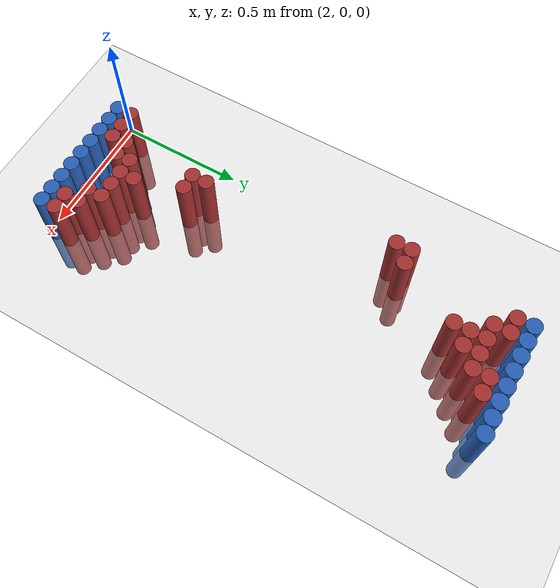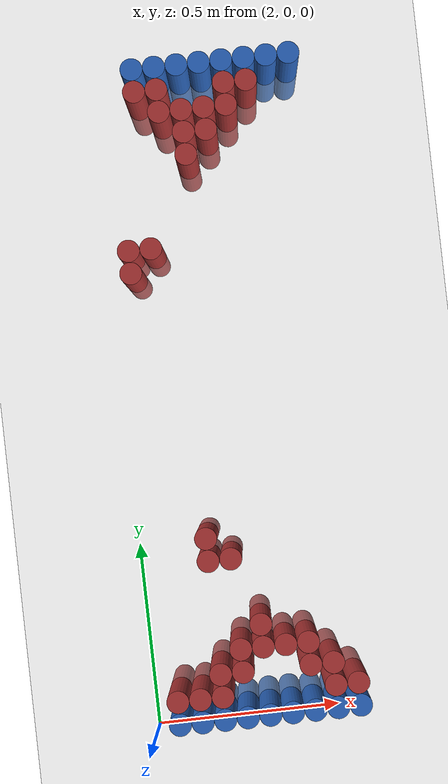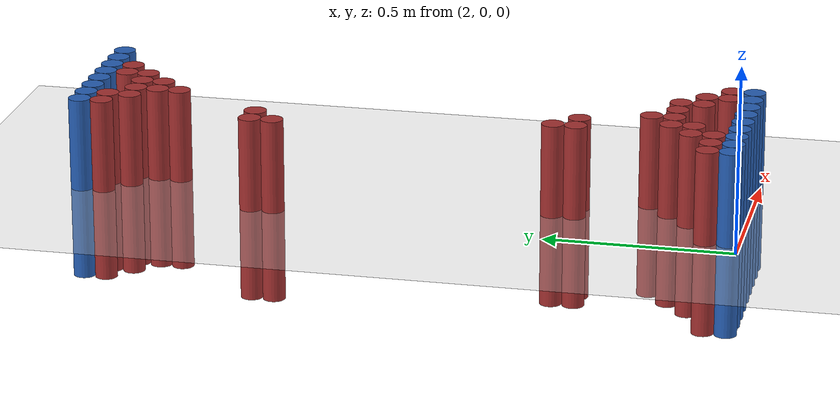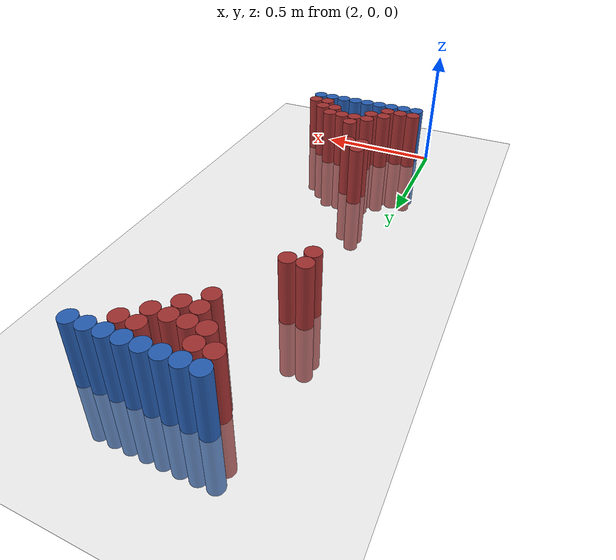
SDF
<sdf version="1.6">
 <world name="default">
  <model name="ground_plane">
   <static>1</static>
   <link name="link">
    <collision name="collision">
     <geometry><plane><normal>0 0 1</normal><size>100 100</size></plane></geometry>
     <surface><friction><ode><mu>100</mu><mu2>50</mu2></ode></friction></surface>
    </collision>
    <visual name="visual">
     <cast_shadows>0</cast_shadows>
     <geometry><plane><normal>0 0 1</normal><size>100 100</size></plane></geometry>
     <material>
      <script><uri>file://media/materials/scripts/gazebo.material</uri><name>Gazebo/Grey</name></script>
     </material>
    </visual>
   </link>
  </model>
  <model name="unit_cylinder_96">
   <static>1</static>
   <pose>2.130000 1.770000 0.000000 0.000000 0.000000 0.000000</pose>
   <link name="link">
    <inertial>
     <mass>1</mass>
     <inertia><ixx>0.145833</ixx><ixy>0</ixy><ixz>0</ixz><iyy>0.145833</iyy><iyz>0</iyz><izz>0.125</izz></inertia>
    </inertial>
    <collision name="collision">
     <geometry><cylinder><radius>0.030000</radius><length>0.5</length></cylinder></geometry>
    </collision>
    <visual name="visual">
     <geometry><cylinder><radius>0.030000</radius><length>0.5</length></cylinder></geometry>
     <material>
      <ambient>0.152000 0.379000 0.720000 1</ambient>
      <diffuse>0.152000 0.379000 0.720000 1</diffuse>
     </material>
     <material>
      <script><name>Gazebo/Grey</name><uri>file://media/materials/scripts/gazebo.material</uri></script>
     </material>
    </visual>
   </link>
  </model>
  <model name="unit_cylinder_97">
   <static>1</static>
   <pose>2.190000 1.770000 0.000000 0.000000 0.000000 0.000000</pose>
   <link name="link">
    <inertial>
     <mass>1</mass>
     <inertia><ixx>0.145833</ixx><ixy>0</ixy><ixz>0</ixz><iyy>0.145833</iyy><iyz>0</iyz><izz>0.125</izz></inertia>
    </inertial>
    <collision name="collision">
     <geometry><cylinder><radius>0.030000</radius><length>0.5</length></cylinder></geometry>
    </collision>
    <visual name="visual">
     <geometry><cylinder><radius>0.030000</radius><length>0.5</length></cylinder></geometry>
     <material>
      <ambient>0.152000 0.379000 0.720000 1</ambient>
      <diffuse>0.152000 0.379000 0.720000 1</diffuse>
     </material>
     <material>
      <script><name>Gazebo/Grey</name><uri>file://media/materials/scripts/gazebo.material</uri></script>
     </material>
    </visual>
   </link>
  </model>
  <model name="unit_cylinder_98">
   <static>1</static>
   <pose>2.250000 1.770000 0.000000 0.000000 0.000000 0.000000</pose>
   <link name="link">
    <inertial>
     <mass>1</mass>
     <inertia><ixx>0.145833</ixx><ixy>0</ixy><ixz>0</ixz><iyy>0.145833</iyy><iyz>0</iyz><izz>0.125</izz></inertia>
    </inertial>
    <collision name="collision">
     <geometry><cylinder><radius>0.030000</radius><length>0.5</length></cylinder></geometry>
    </collision>
    <visual name="visual">
     <geometry><cylinder><radius>0.030000</radius><length>0.5</length></cylinder></geometry>
     <material>
      <ambient>0.152000 0.379000 0.720000 1</ambient>
      <diffuse>0.152000 0.379000 0.720000 1</diffuse>
     </material>
     <material>
      <script><name>Gazebo/Grey</name><uri>file://media/materials/scripts/gazebo.material</uri></script>
     </material>
    </visual>
   </link>
  </model>
  <model name="unit_cylinder_99">
   <static>1</static>
   <pose>2.310000 1.770000 0.000000 0.000000 0.000000 0.000000</pose>
   <link name="link">
    <inertial>
     <mass>1</mass>
     <inertia><ixx>0.145833</ixx><ixy>0</ixy><ixz>0</ixz><iyy>0.145833</iyy><iyz>0</iyz><izz>0.125</izz></inertia>
    </inertial>
    <collision name="collision">
     <geometry><cylinder><radius>0.030000</radius><length>0.5</length></cylinder></geometry>
    </collision>
    <visual name="visual">
     <geometry><cylinder><radius>0.030000</radius><length>0.5</length></cylinder></geometry>
     <material>
      <ambient>0.152000 0.379000 0.720000 1</ambient>
      <diffuse>0.152000 0.379000 0.720000 1</diffuse>
     </material>
     <material>
      <script><name>Gazebo/Grey</name><uri>file://media/materials/scripts/gazebo.material</uri></script>
     </material>
    </visual>
   </link>
  </model>
  <model name="unit_cylinder_100">
   <static>1</static>
   <pose>2.370000 1.770000 0.000000 0.000000 0.000000 0.000000</pose>
   <link name="link">
    <inertial>
     <mass>1</mass>
     <inertia><ixx>0.145833</ixx><ixy>0</ixy><ixz>0</ixz><iyy>0.145833</iyy><iyz>0</iyz><izz>0.125</izz></inertia>
    </inertial>
    <collision name="collision">
     <geometry><cylinder><radius>0.030000</radius><length>0.5</length></cylinder></geometry>
    </collision>
    <visual name="visual">
     <geometry><cylinder><radius>0.030000</radius><length>0.5</length></cylinder></geometry>
     <material>
      <ambient>0.152000 0.379000 0.720000 1</ambient>
      <diffuse>0.152000 0.379000 0.720000 1</diffuse>
     </material>
     <material>
      <script><name>Gazebo/Grey</name><uri>file://media/materials/scripts/gazebo.material</uri></script>
     </material>
    </visual>
   </link>
  </model>
  <model name="unit_cylinder_101">
   <static>1</static>
   <pose>2.430000 1.770000 0.000000 0.000000 0.000000 0.000000</pose>
   <link name="link">
    <inertial>
     <mass>1</mass>
     <inertia><ixx>0.145833</ixx><ixy>0</ixy><ixz>0</ixz><iyy>0.145833</iyy><iyz>0</iyz><izz>0.125</izz></inertia>
    </inertial>
    <collision name="collision">
     <geometry><cylinder><radius>0.030000</radius><length>0.5</length></cylinder></geometry>
    </collision>
    <visual name="visual">
     <geometry><cylinder><radius>0.030000</radius><length>0.5</length></cylinder></geometry>
     <material>
      <ambient>0.152000 0.379000 0.720000 1</ambient>
      <diffuse>0.152000 0.379000 0.720000 1</diffuse>
     </material>
     <material>
      <script><name>Gazebo/Grey</name><uri>file://media/materials/scripts/gazebo.material</uri></script>
     </material>
    </visual>
   </link>
  </model>
  <model name="unit_cylinder_102">
   <static>1</static>
   <pose>2.490000 1.770000 0.000000 0.000000 0.000000 0.000000</pose>
   <link name="link">
    <inertial>
     <mass>1</mass>
     <inertia><ixx>0.145833</ixx><ixy>0</ixy><ixz>0</ixz><iyy>0.145833</iyy><iyz>0</iyz><izz>0.125</izz></inertia>
    </inertial>
    <collision name="collision">
     <geometry><cylinder><radius>0.030000</radius><length>0.5</length></cylinder></geometry>
    </collision>
    <visual name="visual">
     <geometry><cylinder><radius>0.030000</radius><length>0.5</length></cylinder></geometry>
     <material>
      <ambient>0.152000 0.379000 0.720000 1</ambient>
      <diffuse>0.152000 0.379000 0.720000 1</diffuse>
     </material>
     <material>
      <script><name>Gazebo/Grey</name><uri>file://media/materials/scripts/gazebo.material</uri></script>
     </material>
    </visual>
   </link>
  </model>
  <model name="unit_cylinder_103">
   <static>1</static>
   <pose>2.550000 1.770000 0.000000 0.000000 0.000000 0.000000</pose>
   <link name="link">
    <inertial>
     <mass>1</mass>
     <inertia><ixx>0.145833</ixx><ixy>0</ixy><ixz>0</ixz><iyy>0.145833</iyy><iyz>0</iyz><izz>0.125</izz></inertia>
    </inertial>
    <collision name="collision">
     <geometry><cylinder><radius>0.030000</radius><length>0.5</length></cylinder></geometry>
    </collision>
    <visual name="visual">
     <geometry><cylinder><radius>0.030000</radius><length>0.5</length></cylinder></geometry>
     <material>
      <ambient>0.152000 0.379000 0.720000 1</ambient>
      <diffuse>0.152000 0.379000 0.720000 1</diffuse>
     </material>
     <material>
      <script><name>Gazebo/Grey</name><uri>file://media/materials/scripts/gazebo.material</uri></script>
     </material>
    </visual>
   </link>
  </model>
  <model name="unit_cylinder_125">
   <static>1</static>
   <pose>2.130000 1.710000 0.000000 0.000000 0.000000 0.000000</pose>
   <link name="link">
    <inertial>
     <mass>1</mass>
     <inertia><ixx>0.145833</ixx><ixy>0</ixy><ixz>0</ixz><iyy>0.145833</iyy><iyz>0</iyz><izz>0.125</izz></inertia>
    </inertial>
    <collision name="collision">
     <geometry><cylinder><radius>0.030000</radius><length>0.5</length></cylinder></geometry>
    </collision>
    <visual name="visual">
     <geometry><cylinder><radius>0.030000</radius><length>0.5</length></cylinder></geometry>
     <material>
      <ambient>0.648000 0.192000 0.192000 1</ambient>
      <diffuse>0.648000 0.192000 0.192000 1</diffuse>
     </material>
     <material>
      <script><name>Gazebo/Grey</name><uri>file://media/materials/scripts/gazebo.material</uri></script>
     </material>
    </visual>
   </link>
  </model>
  <model name="unit_cylinder_126">
   <static>1</static>
   <pose>2.190000 1.710000 0.000000 0.000000 0.000000 0.000000</pose>
   <link name="link">
    <inertial>
     <mass>1</mass>
     <inertia><ixx>0.145833</ixx><ixy>0</ixy><ixz>0</ixz><iyy>0.145833</iyy><iyz>0</iyz><izz>0.125</izz></inertia>
    </inertial>
    <collision name="collision">
     <geometry><cylinder><radius>0.030000</radius><length>0.5</length></cylinder></geometry>
    </collision>
    <visual name="visual">
     <geometry><cylinder><radius>0.030000</radius><length>0.5</length></cylinder></geometry>
     <material>
      <ambient>0.648000 0.192000 0.192000 1</ambient>
      <diffuse>0.648000 0.192000 0.192000 1</diffuse>
     </material>
     <material>
      <script><name>Gazebo/Grey</name><uri>file://media/materials/scripts/gazebo.material</uri></script>
     </material>
    </visual>
   </link>
  </model>
  <model name="unit_cylinder_127">
   <static>1</static>
   <pose>2.370000 1.710000 0.000000 0.000000 0.000000 0.000000</pose>
   <link name="link">
    <inertial>
     <mass>1</mass>
     <inertia><ixx>0.145833</ixx><ixy>0</ixy><ixz>0</ixz><iyy>0.145833</iyy><iyz>0</iyz><izz>0.125</izz></inertia>
    </inertial>
    <collision name="collision">
     <geometry><cylinder><radius>0.030000</radius><length>0.5</length></cylinder></geometry>
    </collision>
    <visual name="visual">
     <geometry><cylinder><radius>0.030000</radius><length>0.5</length></cylinder></geometry>
     <material>
      <ambient>0.648000 0.192000 0.192000 1</ambient>
      <diffuse>0.648000 0.192000 0.192000 1</diffuse>
     </material>
     <material>
      <script><name>Gazebo/Grey</name><uri>file://media/materials/scripts/gazebo.material</uri></script>
     </material>
    </visual>
   </link>
  </model>
  <model name="unit_cylinder_128">
   <static>1</static>
   <pose>2.430000 1.710000 0.000000 0.000000 0.000000 0.000000</pose>
   <link name="link">
    <inertial>
     <mass>1</mass>
     <inertia><ixx>0.145833</ixx><ixy>0</ixy><ixz>0</ixz><iyy>0.145833</iyy><iyz>0</iyz><izz>0.125</izz></inertia>
    </inertial>
    <collision name="collision">
     <geometry><cylinder><radius>0.030000</radius><length>0.5</length></cylinder></geometry>
    </collision>
    <visual name="visual">
     <geometry><cylinder><radius>0.030000</radius><length>0.5</length></cylinder></geometry>
     <material>
      <ambient>0.648000 0.192000 0.192000 1</ambient>
      <diffuse>0.648000 0.192000 0.192000 1</diffuse>
     </material>
     <material>
      <script><name>Gazebo/Grey</name><uri>file://media/materials/scripts/gazebo.material</uri></script>
     </material>
    </visual>
   </link>
  </model>
  <model name="unit_cylinder_143">
   <static>1</static>
   <pose>2.190000 1.650000 0.000000 0.000000 0.000000 0.000000</pose>
   <link name="link">
    <inertial>
     <mass>1</mass>
     <inertia><ixx>0.145833</ixx><ixy>0</ixy><ixz>0</ixz><iyy>0.145833</iyy><iyz>0</iyz><izz>0.125</izz></inertia>
    </inertial>
    <collision name="collision">
     <geometry><cylinder><radius>0.030000</radius><length>0.5</length></cylinder></geometry>
    </collision>
    <visual name="visual">
     <geometry><cylinder><radius>0.030000</radius><length>0.5</length></cylinder></geometry>
     <material>
      <ambient>0.648000 0.192000 0.192000 1</ambient>
      <diffuse>0.648000 0.192000 0.192000 1</diffuse>
     </material>
     <material>
      <script><name>Gazebo/Grey</name><uri>file://media/materials/scripts/gazebo.material</uri></script>
     </material>
    </visual>
   </link>
  </model>
  <model name="unit_cylinder_144">
   <static>1</static>
   <pose>2.250000 1.650000 0.000000 0.000000 0.000000 0.000000</pose>
   <link name="link">
    <inertial>
     <mass>1</mass>
     <inertia><ixx>0.145833</ixx><ixy>0</ixy><ixz>0</ixz><iyy>0.145833</iyy><iyz>0</iyz><izz>0.125</izz></inertia>
    </inertial>
    <collision name="collision">
     <geometry><cylinder><radius>0.030000</radius><length>0.5</length></cylinder></geometry>
    </collision>
    <visual name="visual">
     <geometry><cylinder><radius>0.030000</radius><length>0.5</length></cylinder></geometry>
     <material>
      <ambient>0.648000 0.192000 0.192000 1</ambient>
      <diffuse>0.648000 0.192000 0.192000 1</diffuse>
     </material>
     <material>
      <script><name>Gazebo/Grey</name><uri>file://media/materials/scripts/gazebo.material</uri></script>
     </material>
    </visual>
   </link>
  </model>
  <model name="unit_cylinder_145">
   <static>1</static>
   <pose>2.310000 1.650000 0.000000 0.000000 0.000000 0.000000</pose>
   <link name="link">
    <inertial>
     <mass>1</mass>
     <inertia><ixx>0.145833</ixx><ixy>0</ixy><ixz>0</ixz><iyy>0.145833</iyy><iyz>0</iyz><izz>0.125</izz></inertia>
    </inertial>
    <collision name="collision">
     <geometry><cylinder><radius>0.030000</radius><length>0.5</length></cylinder></geometry>
    </collision>
    <visual name="visual">
     <geometry><cylinder><radius>0.030000</radius><length>0.5</length></cylinder></geometry>
     <material>
      <ambient>0.648000 0.192000 0.192000 1</ambient>
      <diffuse>0.648000 0.192000 0.192000 1</diffuse>
     </material>
     <material>
      <script><name>Gazebo/Grey</name><uri>file://media/materials/scripts/gazebo.material</uri></script>
     </material>
    </visual>
   </link>
  </model>
  <model name="unit_cylinder_146">
   <static>1</static>
   <pose>2.370000 1.650000 0.000000 0.000000 0.000000 0.000000</pose>
   <link name="link">
    <inertial>
     <mass>1</mass>
     <inertia><ixx>0.145833</ixx><ixy>0</ixy><ixz>0</ixz><iyy>0.145833</iyy><iyz>0</iyz><izz>0.125</izz></inertia>
    </inertial>
    <collision name="collision">
     <geometry><cylinder><radius>0.030000</radius><length>0.5</length></cylinder></geometry>
    </collision>
    <visual name="visual">
     <geometry><cylinder><radius>0.030000</radius><length>0.5</length></cylinder></geometry>
     <material>
      <ambient>0.648000 0.192000 0.192000 1</ambient>
      <diffuse>0.648000 0.192000 0.192000 1</diffuse>
     </material>
     <material>
      <script><name>Gazebo/Grey</name><uri>file://media/materials/scripts/gazebo.material</uri></script>
     </material>
    </visual>
   </link>
  </model>
  <model name="unit_cylinder_159">
   <static>1</static>
   <pose>2.250000 1.590000 0.000000 0.000000 0.000000 0.000000</pose>
   <link name="link">
    <inertial>
     <mass>1</mass>
     <inertia><ixx>0.145833</ixx><ixy>0</ixy><ixz>0</ixz><iyy>0.145833</iyy><iyz>0</iyz><izz>0.125</izz></inertia>
    </inertial>
    <collision name="collision">
     <geometry><cylinder><radius>0.030000</radius><length>0.5</length></cylinder></geometry>
    </collision>
    <visual name="visual">
     <geometry><cylinder><radius>0.030000</radius><length>0.5</length></cylinder></geometry>
     <material>
      <ambient>0.648000 0.192000 0.192000 1</ambient>
      <diffuse>0.648000 0.192000 0.192000 1</diffuse>
     </material>
     <material>
      <script><name>Gazebo/Grey</name><uri>file://media/materials/scripts/gazebo.material</uri></script>
     </material>
    </visual>
   </link>
  </model>
  <model name="unit_cylinder_160">
   <static>1</static>
   <pose>2.310000 1.590000 0.000000 0.000000 0.000000 0.000000</pose>
   <link name="link">
    <inertial>
     <mass>1</mass>
     <inertia><ixx>0.145833</ixx><ixy>0</ixy><ixz>0</ixz><iyy>0.145833</iyy><iyz>0</iyz><izz>0.125</izz></inertia>
    </inertial>
    <collision name="collision">
     <geometry><cylinder><radius>0.030000</radius><length>0.5</length></cylinder></geometry>
    </collision>
    <visual name="visual">
     <geometry><cylinder><radius>0.030000</radius><length>0.5</length></cylinder></geometry>
     <material>
      <ambient>0.648000 0.192000 0.192000 1</ambient>
      <diffuse>0.648000 0.192000 0.192000 1</diffuse>
     </material>
     <material>
      <script><name>Gazebo/Grey</name><uri>file://media/materials/scripts/gazebo.material</uri></script>
     </material>
    </visual>
   </link>
  </model>
  <model name="unit_cylinder_169">
   <static>1</static>
   <pose>2.250000 1.530000 0.000000 0.000000 0.000000 0.000000</pose>
   <link name="link">
    <inertial>
     <mass>1</mass>
     <inertia><ixx>0.145833</ixx><ixy>0</ixy><ixz>0</ixz><iyy>0.145833</iyy><iyz>0</iyz><izz>0.125</izz></inertia>
    </inertial>
    <collision name="collision">
     <geometry><cylinder><radius>0.030000</radius><length>0.5</length></cylinder></geometry>
    </collision>
    <visual name="visual">
     <geometry><cylinder><radius>0.030000</radius><length>0.5</length></cylinder></geometry>
     <material>
      <ambient>0.648000 0.192000 0.192000 1</ambient>
      <diffuse>0.648000 0.192000 0.192000 1</diffuse>
     </material>
     <material>
      <script><name>Gazebo/Grey</name><uri>file://media/materials/scripts/gazebo.material</uri></script>
     </material>
    </visual>
   </link>
  </model>
  <model name="unit_cylinder_180">
   <static>1</static>
   <pose>2.070000 1.290000 0.000000 0.000000 0.000000 0.000000</pose>
   <link name="link">
    <inertial>
     <mass>1</mass>
     <inertia><ixx>0.145833</ixx><ixy>0</ixy><ixz>0</ixz><iyy>0.145833</iyy><iyz>0</iyz><izz>0.125</izz></inertia>
    </inertial>
    <collision name="collision">
     <geometry><cylinder><radius>0.030000</radius><length>0.5</length></cylinder></geometry>
    </collision>
    <visual name="visual">
     <geometry><cylinder><radius>0.030000</radius><length>0.5</length></cylinder></geometry>
     <material>
      <ambient>0.648000 0.192000 0.192000 1</ambient>
      <diffuse>0.648000 0.192000 0.192000 1</diffuse>
     </material>
     <material>
      <script><name>Gazebo/Grey</name><uri>file://media/materials/scripts/gazebo.material</uri></script>
     </material>
    </visual>
   </link>
  </model>
  <model name="unit_cylinder_181">
   <static>1</static>
   <pose>2.130000 1.290000 0.000000 0.000000 0.000000 0.000000</pose>
   <link name="link">
    <inertial>
     <mass>1</mass>
     <inertia><ixx>0.145833</ixx><ixy>0</ixy><ixz>0</ixz><iyy>0.145833</iyy><iyz>0</iyz><izz>0.125</izz></inertia>
    </inertial>
    <collision name="collision">
     <geometry><cylinder><radius>0.030000</radius><length>0.5</length></cylinder></geometry>
    </collision>
    <visual name="visual">
     <geometry><cylinder><radius>0.030000</radius><length>0.5</length></cylinder></geometry>
     <material>
      <ambient>0.648000 0.192000 0.192000 1</ambient>
      <diffuse>0.648000 0.192000 0.192000 1</diffuse>
     </material>
     <material>
      <script><name>Gazebo/Grey</name><uri>file://media/materials/scripts/gazebo.material</uri></script>
     </material>
    </visual>
   </link>
  </model>
  <model name="unit_cylinder_184">
   <static>1</static>
   <pose>2.070000 1.230000 0.000000 0.000000 0.000000 0.000000</pose>
   <link name="link">
    <inertial>
     <mass>1</mass>
     <inertia><ixx>0.145833</ixx><ixy>0</ixy><ixz>0</ixz><iyy>0.145833</iyy><iyz>0</iyz><izz>0.125</izz></inertia>
    </inertial>
    <collision name="collision">
     <geometry><cylinder><radius>0.030000</radius><length>0.5</length></cylinder></geometry>
    </collision>
    <visual name="visual">
     <geometry><cylinder><radius>0.030000</radius><length>0.5</length></cylinder></geometry>
     <material>
      <ambient>0.648000 0.192000 0.192000 1</ambient>
      <diffuse>0.648000 0.192000 0.192000 1</diffuse>
     </material>
     <material>
      <script><name>Gazebo/Grey</name><uri>file://media/materials/scripts/gazebo.material</uri></script>
     </material>
    </visual>
   </link>
  </model>
  <model name="unit_cylinder_210">
   <static>1</static>
   <pose>2.190000 0.510000 0.000000 0.000000 0.000000 0.000000</pose>
   <link name="link">
    <inertial>
     <mass>1</mass>
     <inertia><ixx>0.145833</ixx><ixy>0</ixy><ixz>0</ixz><iyy>0.145833</iyy><iyz>0</iyz><izz>0.125</izz></inertia>
    </inertial>
    <collision name="collision">
     <geometry><cylinder><radius>0.030000</radius><length>0.5</length></cylinder></geometry>
    </collision>
    <visual name="visual">
     <geometry><cylinder><radius>0.030000</radius><length>0.5</length></cylinder></geometry>
     <material>
      <ambient>0.648000 0.192000 0.192000 1</ambient>
      <diffuse>0.648000 0.192000 0.192000 1</diffuse>
     </material>
     <material>
      <script><name>Gazebo/Grey</name><uri>file://media/materials/scripts/gazebo.material</uri></script>
     </material>
    </visual>
   </link>
  </model>
  <model name="unit_cylinder_213">
   <static>1</static>
   <pose>2.190000 0.450000 0.000000 0.000000 0.000000 0.000000</pose>
   <link name="link">
    <inertial>
     <mass>1</mass>
     <inertia><ixx>0.145833</ixx><ixy>0</ixy><ixz>0</ixz><iyy>0.145833</iyy><iyz>0</iyz><izz>0.125</izz></inertia>
    </inertial>
    <collision name="collision">
     <geometry><cylinder><radius>0.030000</radius><length>0.5</length></cylinder></geometry>
    </collision>
    <visual name="visual">
     <geometry><cylinder><radius>0.030000</radius><length>0.5</length></cylinder></geometry>
     <material>
      <ambient>0.648000 0.192000 0.192000 1</ambient>
      <diffuse>0.648000 0.192000 0.192000 1</diffuse>
     </material>
     <material>
      <script><name>Gazebo/Grey</name><uri>file://media/materials/scripts/gazebo.material</uri></script>
     </material>
    </visual>
   </link>
  </model>
  <model name="unit_cylinder_214">
   <static>1</static>
   <pose>2.250000 0.450000 0.000000 0.000000 0.000000 0.000000</pose>
   <link name="link">
    <inertial>
     <mass>1</mass>
     <inertia><ixx>0.145833</ixx><ixy>0</ixy><ixz>0</ixz><iyy>0.145833</iyy><iyz>0</iyz><izz>0.125</izz></inertia>
    </inertial>
    <collision name="collision">
     <geometry><cylinder><radius>0.030000</radius><length>0.5</length></cylinder></geometry>
    </collision>
    <visual name="visual">
     <geometry><cylinder><radius>0.030000</radius><length>0.5</length></cylinder></geometry>
     <material>
      <ambient>0.648000 0.192000 0.192000 1</ambient>
      <diffuse>0.648000 0.192000 0.192000 1</diffuse>
     </material>
     <material>
      <script><name>Gazebo/Grey</name><uri>file://media/materials/scripts/gazebo.material</uri></script>
     </material>
    </visual>
   </link>
  </model>
  <model name="unit_cylinder_220">
   <static>1</static>
   <pose>2.310000 0.270000 0.000000 0.000000 0.000000 0.000000</pose>
   <link name="link">
    <inertial>
     <mass>1</mass>
     <inertia><ixx>0.145833</ixx><ixy>0</ixy><ixz>0</ixz><iyy>0.145833</iyy><iyz>0</iyz><izz>0.125</izz></inertia>
    </inertial>
    <collision name="collision">
     <geometry><cylinder><radius>0.030000</radius><length>0.5</length></cylinder></geometry>
    </collision>
    <visual name="visual">
     <geometry><cylinder><radius>0.030000</radius><length>0.5</length></cylinder></geometry>
     <material>
      <ambient>0.648000 0.192000 0.192000 1</ambient>
      <diffuse>0.648000 0.192000 0.192000 1</diffuse>
     </material>
     <material>
      <script><name>Gazebo/Grey</name><uri>file://media/materials/scripts/gazebo.material</uri></script>
     </material>
    </visual>
   </link>
  </model>
  <model name="unit_cylinder_228">
   <static>1</static>
   <pose>2.250000 0.210000 0.000000 0.000000 0.000000 0.000000</pose>
   <link name="link">
    <inertial>
     <mass>1</mass>
     <inertia><ixx>0.145833</ixx><ixy>0</ixy><ixz>0</ixz><iyy>0.145833</iyy><iyz>0</iyz><izz>0.125</izz></inertia>
    </inertial>
    <collision name="collision">
     <geometry><cylinder><radius>0.030000</radius><length>0.5</length></cylinder></geometry>
    </collision>
    <visual name="visual">
     <geometry><cylinder><radius>0.030000</radius><length>0.5</length></cylinder></geometry>
     <material>
      <ambient>0.648000 0.192000 0.192000 1</ambient>
      <diffuse>0.648000 0.192000 0.192000 1</diffuse>
     </material>
     <material>
      <script><name>Gazebo/Grey</name><uri>file://media/materials/scripts/gazebo.material</uri></script>
     </material>
    </visual>
   </link>
  </model>
  <model name="unit_cylinder_229">
   <static>1</static>
   <pose>2.310000 0.210000 0.000000 0.000000 0.000000 0.000000</pose>
   <link name="link">
    <inertial>
     <mass>1</mass>
     <inertia><ixx>0.145833</ixx><ixy>0</ixy><ixz>0</ixz><iyy>0.145833</iyy><iyz>0</iyz><izz>0.125</izz></inertia>
    </inertial>
    <collision name="collision">
     <geometry><cylinder><radius>0.030000</radius><length>0.5</length></cylinder></geometry>
    </collision>
    <visual name="visual">
     <geometry><cylinder><radius>0.030000</radius><length>0.5</length></cylinder></geometry>
     <material>
      <ambient>0.648000 0.192000 0.192000 1</ambient>
      <diffuse>0.648000 0.192000 0.192000 1</diffuse>
     </material>
     <material>
      <script><name>Gazebo/Grey</name><uri>file://media/materials/scripts/gazebo.material</uri></script>
     </material>
    </visual>
   </link>
  </model>
  <model name="unit_cylinder_230">
   <static>1</static>
   <pose>2.370000 0.210000 0.000000 0.000000 0.000000 0.000000</pose>
   <link name="link">
    <inertial>
     <mass>1</mass>
     <inertia><ixx>0.145833</ixx><ixy>0</ixy><ixz>0</ixz><iyy>0.145833</iyy><iyz>0</iyz><izz>0.125</izz></inertia>
    </inertial>
    <collision name="collision">
     <geometry><cylinder><radius>0.030000</radius><length>0.5</length></cylinder></geometry>
    </collision>
    <visual name="visual">
     <geometry><cylinder><radius>0.030000</radius><length>0.5</length></cylinder></geometry>
     <material>
      <ambient>0.648000 0.192000 0.192000 1</ambient>
      <diffuse>0.648000 0.192000 0.192000 1</diffuse>
     </material>
     <material>
      <script><name>Gazebo/Grey</name><uri>file://media/materials/scripts/gazebo.material</uri></script>
     </material>
    </visual>
   </link>
  </model>
  <model name="unit_cylinder_231">
   <static>1</static>
   <pose>2.430000 0.210000 0.000000 0.000000 0.000000 0.000000</pose>
   <link name="link">
    <inertial>
     <mass>1</mass>
     <inertia><ixx>0.145833</ixx><ixy>0</ixy><ixz>0</ixz><iyy>0.145833</iyy><iyz>0</iyz><izz>0.125</izz></inertia>
    </inertial>
    <collision name="collision">
     <geometry><cylinder><radius>0.030000</radius><length>0.5</length></cylinder></geometry>
    </collision>
    <visual name="visual">
     <geometry><cylinder><radius>0.030000</radius><length>0.5</length></cylinder></geometry>
     <material>
      <ambient>0.648000 0.192000 0.192000 1</ambient>
      <diffuse>0.648000 0.192000 0.192000 1</diffuse>
     </material>
     <material>
      <script><name>Gazebo/Grey</name><uri>file://media/materials/scripts/gazebo.material</uri></script>
     </material>
    </visual>
   </link>
  </model>
  <model name="unit_cylinder_237">
   <static>1</static>
   <pose>2.190000 0.150000 0.000000 0.000000 0.000000 0.000000</pose>
   <link name="link">
    <inertial>
     <mass>1</mass>
     <inertia><ixx>0.145833</ixx><ixy>0</ixy><ixz>0</ixz><iyy>0.145833</iyy><iyz>0</iyz><izz>0.125</izz></inertia>
    </inertial>
    <collision name="collision">
     <geometry><cylinder><radius>0.030000</radius><length>0.5</length></cylinder></geometry>
    </collision>
    <visual name="visual">
     <geometry><cylinder><radius>0.030000</radius><length>0.5</length></cylinder></geometry>
     <material>
      <ambient>0.648000 0.192000 0.192000 1</ambient>
      <diffuse>0.648000 0.192000 0.192000 1</diffuse>
     </material>
     <material>
      <script><name>Gazebo/Grey</name><uri>file://media/materials/scripts/gazebo.material</uri></script>
     </material>
    </visual>
   </link>
  </model>
  <model name="unit_cylinder_238">
   <static>1</static>
   <pose>2.250000 0.150000 0.000000 0.000000 0.000000 0.000000</pose>
   <link name="link">
    <inertial>
     <mass>1</mass>
     <inertia><ixx>0.145833</ixx><ixy>0</ixy><ixz>0</ixz><iyy>0.145833</iyy><iyz>0</iyz><izz>0.125</izz></inertia>
    </inertial>
    <collision name="collision">
     <geometry><cylinder><radius>0.030000</radius><length>0.5</length></cylinder></geometry>
    </collision>
    <visual name="visual">
     <geometry><cylinder><radius>0.030000</radius><length>0.5</length></cylinder></geometry>
     <material>
      <ambient>0.648000 0.192000 0.192000 1</ambient>
      <diffuse>0.648000 0.192000 0.192000 1</diffuse>
     </material>
     <material>
      <script><name>Gazebo/Grey</name><uri>file://media/materials/scripts/gazebo.material</uri></script>
     </material>
    </visual>
   </link>
  </model>
  <model name="unit_cylinder_239">
   <static>1</static>
   <pose>2.430000 0.150000 0.000000 0.000000 0.000000 0.000000</pose>
   <link name="link">
    <inertial>
     <mass>1</mass>
     <inertia><ixx>0.145833</ixx><ixy>0</ixy><ixz>0</ixz><iyy>0.145833</iyy><iyz>0</iyz><izz>0.125</izz></inertia>
    </inertial>
    <collision name="collision">
     <geometry><cylinder><radius>0.030000</radius><length>0.5</length></cylinder></geometry>
    </collision>
    <visual name="visual">
     <geometry><cylinder><radius>0.030000</radius><length>0.5</length></cylinder></geometry>
     <material>
      <ambient>0.648000 0.192000 0.192000 1</ambient>
      <diffuse>0.648000 0.192000 0.192000 1</diffuse>
     </material>
     <material>
      <script><name>Gazebo/Grey</name><uri>file://media/materials/scripts/gazebo.material</uri></script>
     </material>
    </visual>
   </link>
  </model>
  <model name="unit_cylinder_240">
   <static>1</static>
   <pose>2.490000 0.150000 0.000000 0.000000 0.000000 0.000000</pose>
   <link name="link">
    <inertial>
     <mass>1</mass>
     <inertia><ixx>0.145833</ixx><ixy>0</ixy><ixz>0</ixz><iyy>0.145833</iyy><iyz>0</iyz><izz>0.125</izz></inertia>
    </inertial>
    <collision name="collision">
     <geometry><cylinder><radius>0.030000</radius><length>0.5</length></cylinder></geometry>
    </collision>
    <visual name="visual">
     <geometry><cylinder><radius>0.030000</radius><length>0.5</length></cylinder></geometry>
     <material>
      <ambient>0.648000 0.192000 0.192000 1</ambient>
      <diffuse>0.648000 0.192000 0.192000 1</diffuse>
     </material>
     <material>
      <script><name>Gazebo/Grey</name><uri>file://media/materials/scripts/gazebo.material</uri></script>
     </material>
    </visual>
   </link>
  </model>
  <model name="unit_cylinder_243">
   <static>1</static>
   <pose>2.070000 0.090000 0.000000 0.000000 0.000000 0.000000</pose>
   <link name="link">
    <inertial>
     <mass>1</mass>
     <inertia><ixx>0.145833</ixx><ixy>0</ixy><ixz>0</ixz><iyy>0.145833</iyy><iyz>0</iyz><izz>0.125</izz></inertia>
    </inertial>
    <collision name="collision">
     <geometry><cylinder><radius>0.030000</radius><length>0.5</length></cylinder></geometry>
    </collision>
    <visual name="visual">
     <geometry><cylinder><radius>0.030000</radius><length>0.5</length></cylinder></geometry>
     <material>
      <ambient>0.648000 0.192000 0.192000 1</ambient>
      <diffuse>0.648000 0.192000 0.192000 1</diffuse>
     </material>
     <material>
      <script><name>Gazebo/Grey</name><uri>file://media/materials/scripts/gazebo.material</uri></script>
     </material>
    </visual>
   </link>
  </model>
  <model name="unit_cylinder_244">
   <static>1</static>
   <pose>2.130000 0.090000 0.000000 0.000000 0.000000 0.000000</pose>
   <link name="link">
    <inertial>
     <mass>1</mass>
     <inertia><ixx>0.145833</ixx><ixy>0</ixy><ixz>0</ixz><iyy>0.145833</iyy><iyz>0</iyz><izz>0.125</izz></inertia>
    </inertial>
    <collision name="collision">
     <geometry><cylinder><radius>0.030000</radius><length>0.5</length></cylinder></geometry>
    </collision>
    <visual name="visual">
     <geometry><cylinder><radius>0.030000</radius><length>0.5</length></cylinder></geometry>
     <material>
      <ambient>0.648000 0.192000 0.192000 1</ambient>
      <diffuse>0.648000 0.192000 0.192000 1</diffuse>
     </material>
     <material>
      <script><name>Gazebo/Grey</name><uri>file://media/materials/scripts/gazebo.material</uri></script>
     </material>
    </visual>
   </link>
  </model>
  <model name="unit_cylinder_245">
   <static>1</static>
   <pose>2.190000 0.090000 0.000000 0.000000 0.000000 0.000000</pose>
   <link name="link">
    <inertial>
     <mass>1</mass>
     <inertia><ixx>0.145833</ixx><ixy>0</ixy><ixz>0</ixz><iyy>0.145833</iyy><iyz>0</iyz><izz>0.125</izz></inertia>
    </inertial>
    <collision name="collision">
     <geometry><cylinder><radius>0.030000</radius><length>0.5</length></cylinder></geometry>
    </collision>
    <visual name="visual">
     <geometry><cylinder><radius>0.030000</radius><length>0.5</length></cylinder></geometry>
     <material>
      <ambient>0.648000 0.192000 0.192000 1</ambient>
      <diffuse>0.648000 0.192000 0.192000 1</diffuse>
     </material>
     <material>
      <script><name>Gazebo/Grey</name><uri>file://media/materials/scripts/gazebo.material</uri></script>
     </material>
    </visual>
   </link>
  </model>
  <model name="unit_cylinder_246">
   <static>1</static>
   <pose>2.490000 0.090000 0.000000 0.000000 0.000000 0.000000</pose>
   <link name="link">
    <inertial>
     <mass>1</mass>
     <inertia><ixx>0.145833</ixx><ixy>0</ixy><ixz>0</ixz><iyy>0.145833</iyy><iyz>0</iyz><izz>0.125</izz></inertia>
    </inertial>
    <collision name="collision">
     <geometry><cylinder><radius>0.030000</radius><length>0.5</length></cylinder></geometry>
    </collision>
    <visual name="visual">
     <geometry><cylinder><radius>0.030000</radius><length>0.5</length></cylinder></geometry>
     <material>
      <ambient>0.648000 0.192000 0.192000 1</ambient>
      <diffuse>0.648000 0.192000 0.192000 1</diffuse>
     </material>
     <material>
      <script><name>Gazebo/Grey</name><uri>file://media/materials/scripts/gazebo.material</uri></script>
     </material>
    </visual>
   </link>
  </model>
  <model name="unit_cylinder_247">
   <static>1</static>
   <pose>2.550000 0.090000 0.000000 0.000000 0.000000 0.000000</pose>
   <link name="link">
    <inertial>
     <mass>1</mass>
     <inertia><ixx>0.145833</ixx><ixy>0</ixy><ixz>0</ixz><iyy>0.145833</iyy><iyz>0</iyz><izz>0.125</izz></inertia>
    </inertial>
    <collision name="collision">
     <geometry><cylinder><radius>0.030000</radius><length>0.5</length></cylinder></geometry>
    </collision>
    <visual name="visual">
     <geometry><cylinder><radius>0.030000</radius><length>0.5</length></cylinder></geometry>
     <material>
      <ambient>0.648000 0.192000 0.192000 1</ambient>
      <diffuse>0.648000 0.192000 0.192000 1</diffuse>
     </material>
     <material>
      <script><name>Gazebo/Grey</name><uri>file://media/materials/scripts/gazebo.material</uri></script>
     </material>
    </visual>
   </link>
  </model>
  <model name="unit_cylinder_257">
   <static>1</static>
   <pose>2.070000 0.030000 0.000000 0.000000 0.000000 0.000000</pose>
   <link name="link">
    <inertial>
     <mass>1</mass>
     <inertia><ixx>0.145833</ixx><ixy>0</ixy><ixz>0</ixz><iyy>0.145833</iyy><iyz>0</iyz><izz>0.125</izz></inertia>
    </inertial>
    <collision name="collision">
     <geometry><cylinder><radius>0.030000</radius><length>0.5</length></cylinder></geometry>
    </collision>
    <visual name="visual">
     <geometry><cylinder><radius>0.030000</radius><length>0.5</length></cylinder></geometry>
     <material>
      <ambient>0.152000 0.379000 0.720000 1</ambient>
      <diffuse>0.152000 0.379000 0.720000 1</diffuse>
     </material>
     <material>
      <script><name>Gazebo/Grey</name><uri>file://media/materials/scripts/gazebo.material</uri></script>
     </material>
    </visual>
   </link>
  </model>
  <model name="unit_cylinder_258">
   <static>1</static>
   <pose>2.130000 0.030000 0.000000 0.000000 0.000000 0.000000</pose>
   <link name="link">
    <inertial>
     <mass>1</mass>
     <inertia><ixx>0.145833</ixx><ixy>0</ixy><ixz>0</ixz><iyy>0.145833</iyy><iyz>0</iyz><izz>0.125</izz></inertia>
    </inertial>
    <collision name="collision">
     <geometry><cylinder><radius>0.030000</radius><length>0.5</length></cylinder></geometry>
    </collision>
    <visual name="visual">
     <geometry><cylinder><radius>0.030000</radius><length>0.5</length></cylinder></geometry>
     <material>
      <ambient>0.152000 0.379000 0.720000 1</ambient>
      <diffuse>0.152000 0.379000 0.720000 1</diffuse>
     </material>
     <material>
      <script><name>Gazebo/Grey</name><uri>file://media/materials/scripts/gazebo.material</uri></script>
     </material>
    </visual>
   </link>
  </model>
  <model name="unit_cylinder_259">
   <static>1</static>
   <pose>2.190000 0.030000 0.000000 0.000000 0.000000 0.000000</pose>
   <link name="link">
    <inertial>
     <mass>1</mass>
     <inertia><ixx>0.145833</ixx><ixy>0</ixy><ixz>0</ixz><iyy>0.145833</iyy><iyz>0</iyz><izz>0.125</izz></inertia>
    </inertial>
    <collision name="collision">
     <geometry><cylinder><radius>0.030000</radius><length>0.5</length></cylinder></geometry>
    </collision>
    <visual name="visual">
     <geometry><cylinder><radius>0.030000</radius><length>0.5</length></cylinder></geometry>
     <material>
      <ambient>0.152000 0.379000 0.720000 1</ambient>
      <diffuse>0.152000 0.379000 0.720000 1</diffuse>
     </material>
     <material>
      <script><name>Gazebo/Grey</name><uri>file://media/materials/scripts/gazebo.material</uri></script>
     </material>
    </visual>
   </link>
  </model>
  <model name="unit_cylinder_260">
   <static>1</static>
   <pose>2.250000 0.030000 0.000000 0.000000 0.000000 0.000000</pose>
   <link name="link">
    <inertial>
     <mass>1</mass>
     <inertia><ixx>0.145833</ixx><ixy>0</ixy><ixz>0</ixz><iyy>0.145833</iyy><iyz>0</iyz><izz>0.125</izz></inertia>
    </inertial>
    <collision name="collision">
     <geometry><cylinder><radius>0.030000</radius><length>0.5</length></cylinder></geometry>
    </collision>
    <visual name="visual">
     <geometry><cylinder><radius>0.030000</radius><length>0.5</length></cylinder></geometry>
     <material>
      <ambient>0.152000 0.379000 0.720000 1</ambient>
      <diffuse>0.152000 0.379000 0.720000 1</diffuse>
     </material>
     <material>
      <script><name>Gazebo/Grey</name><uri>file://media/materials/scripts/gazebo.material</uri></script>
     </material>
    </visual>
   </link>
  </model>
  <model name="unit_cylinder_261">
   <static>1</static>
   <pose>2.310000 0.030000 0.000000 0.000000 0.000000 0.000000</pose>
   <link name="link">
    <inertial>
     <mass>1</mass>
     <inertia><ixx>0.145833</ixx><ixy>0</ixy><ixz>0</ixz><iyy>0.145833</iyy><iyz>0</iyz><izz>0.125</izz></inertia>
    </inertial>
    <collision name="collision">
     <geometry><cylinder><radius>0.030000</radius><length>0.5</length></cylinder></geometry>
    </collision>
    <visual name="visual">
     <geometry><cylinder><radius>0.030000</radius><length>0.5</length></cylinder></geometry>
     <material>
      <ambient>0.152000 0.379000 0.720000 1</ambient>
      <diffuse>0.152000 0.379000 0.720000 1</diffuse>
     </material>
     <material>
      <script><name>Gazebo/Grey</name><uri>file://media/materials/scripts/gazebo.material</uri></script>
     </material>
    </visual>
   </link>
  </model>
  <model name="unit_cylinder_262">
   <static>1</static>
   <pose>2.370000 0.030000 0.000000 0.000000 0.000000 0.000000</pose>
   <link name="link">
    <inertial>
     <mass>1</mass>
     <inertia><ixx>0.145833</ixx><ixy>0</ixy><ixz>0</ixz><iyy>0.145833</iyy><iyz>0</iyz><izz>0.125</izz></inertia>
    </inertial>
    <collision name="collision">
     <geometry><cylinder><radius>0.030000</radius><length>0.5</length></cylinder></geometry>
    </collision>
    <visual name="visual">
     <geometry><cylinder><radius>0.030000</radius><length>0.5</length></cylinder></geometry>
     <material>
      <ambient>0.152000 0.379000 0.720000 1</ambient>
      <diffuse>0.152000 0.379000 0.720000 1</diffuse>
     </material>
     <material>
      <script><name>Gazebo/Grey</name><uri>file://media/materials/scripts/gazebo.material</uri></script>
     </material>
    </visual>
   </link>
  </model>
  <model name="unit_cylinder_263">
   <static>1</static>
   <pose>2.430000 0.030000 0.000000 0.000000 0.000000 0.000000</pose>
   <link name="link">
    <inertial>
     <mass>1</mass>
     <inertia><ixx>0.145833</ixx><ixy>0</ixy><ixz>0</ixz><iyy>0.145833</iyy><iyz>0</iyz><izz>0.125</izz></inertia>
    </inertial>
    <collision name="collision">
     <geometry><cylinder><radius>0.030000</radius><length>0.5</length></cylinder></geometry>
    </collision>
    <visual name="visual">
     <geometry><cylinder><radius>0.030000</radius><length>0.5</length></cylinder></geometry>
     <material>
      <ambient>0.152000 0.379000 0.720000 1</ambient>
      <diffuse>0.152000 0.379000 0.720000 1</diffuse>
     </material>
     <material>
      <script><name>Gazebo/Grey</name><uri>file://media/materials/scripts/gazebo.material</uri></script>
     </material>
    </visual>
   </link>
  </model>
  <model name="unit_cylinder_264">
   <static>1</static>
   <pose>2.490000 0.030000 0.000000 0.000000 0.000000 0.000000</pose>
   <link name="link">
    <inertial>
     <mass>1</mass>
     <inertia><ixx>0.145833</ixx><ixy>0</ixy><ixz>0</ixz><iyy>0.145833</iyy><iyz>0</iyz><izz>0.125</izz></inertia>
    </inertial>
    <collision name="collision">
     <geometry><cylinder><radius>0.030000</radius><length>0.5</length></cylinder></geometry>
    </collision>
    <visual name="visual">
     <geometry><cylinder><radius>0.030000</radius><length>0.5</length></cylinder></geometry>
     <material>
      <ambient>0.152000 0.379000 0.720000 1</ambient>
      <diffuse>0.152000 0.379000 0.720000 1</diffuse>
     </material>
     <material>
      <script><name>Gazebo/Grey</name><uri>file://media/materials/scripts/gazebo.material</uri></script>
     </material>
    </visual>
   </link>
  </model>
  <model name="unit_cylinder_265">
   <static>1</static>
   <pose>2.550000 0.030000 0.000000 0.000000 0.000000 0.000000</pose>
   <link name="link">
    <inertial>
     <mass>1</mass>
     <inertia><ixx>0.145833</ixx><ixy>0</ixy><ixz>0</ixz><iyy>0.145833</iyy><iyz>0</iyz><izz>0.125</izz></inertia>
    </inertial>
    <collision name="collision">
     <geometry><cylinder><radius>0.030000</radius><length>0.5</length></cylinder></geometry>
    </collision>
    <visual name="visual">
     <geometry><cylinder><radius>0.030000</radius><length>0.5</length></cylinder></geometry>
     <material>
      <ambient>0.152000 0.379000 0.720000 1</ambient>
      <diffuse>0.152000 0.379000 0.720000 1</diffuse>
     </material>
     <material>
      <script><name>Gazebo/Grey</name><uri>file://media/materials/scripts/gazebo.material</uri></script>
     </material>
    </visual>
   </link>
  </model>
 </world>
</sdf>
